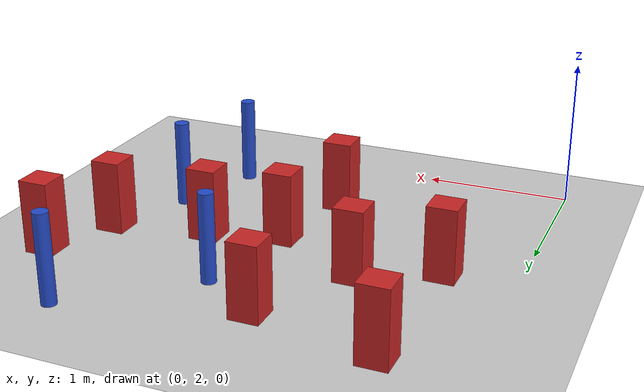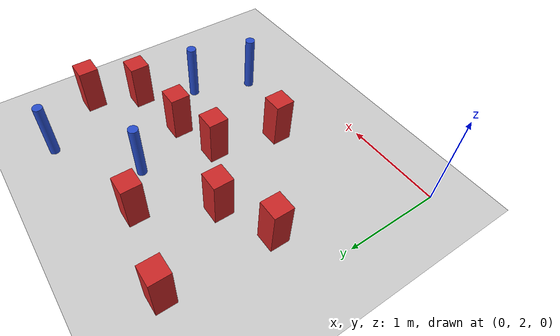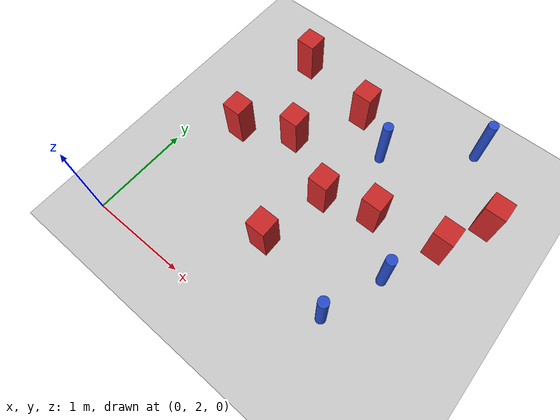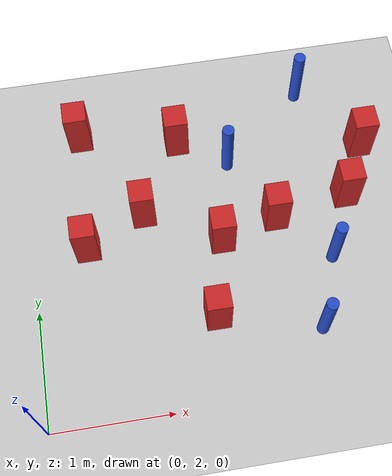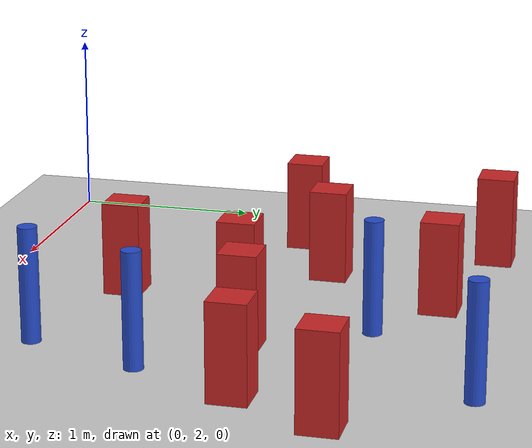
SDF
<sdf version="1.6">
 <world name="default">
  <model name="ground_plane">
   <static>1</static>
   <link name="link">
    <collision name="collision">
     <geometry><plane><normal>0 0 1</normal><size>100 100</size></plane></geometry>
     <surface><friction><ode><mu>100</mu><mu2>50</mu2></ode></friction></surface>
    </collision>
    <visual name="visual">
     <cast_shadows>0</cast_shadows>
     <geometry><plane><normal>0 0 1</normal><size>100 100</size></plane></geometry>
     <material>
      <ambient>1.0 1.0 1.0 1.0</ambient>
      <diffuse>0.8 0.8 0.8 1.0</diffuse>
      <specular>0.01 0.01 0.01 1.000000</specular>
     </material>
    </visual>
   </link>
  </model>
  <model name="square_post_obstacle1">
   <static>true</static>
   <pose>0.463909834269 3.49342118369 1.91545236811e-07 -7.35059704564e-06 1.12565212e-07 2.39332434364e-05</pose>
   <link name="link">
    <pose>0 0 0.25 0 -0 0</pose>
    <inertial>
     <mass>100</mass>
     <inertia>
      <ixx>0.166667</ixx>
      <ixy>0</ixy>
      <ixz>0</ixz>
      <iyy>0.166667</iyy>
      <iyz>0</iyz>
      <izz>0.166667</izz>
     </inertia>
    </inertial>
    <collision name="collision"><geometry><box><size>.2 .2 .5</size></box></geometry></collision>
    <visual name="visual">
     <geometry><box><size>.2 .2 .5</size></box></geometry>
     <material>
      <script><name>Gazebo/Red</name><uri>file://media/materials/scripts/gazebo.material</uri></script>
     </material>
    </visual>
   </link>
  </model>
  <model name="square_post_obstacle22">
   <static>true</static>
   <pose>2.95675925891 4.12485396174 1.91545236811e-07 -7.35059704564e-06 1.12565212e-07 2.39332434364e-05</pose>
   <link name="link">
    <pose>0 0 0.25 0 -0 0</pose>
    <inertial>
     <mass>100</mass>
     <inertia>
      <ixx>0.166667</ixx>
      <ixy>0</ixy>
      <ixz>0</ixz>
      <iyy>0.166667</iyy>
      <iyz>0</iyz>
      <izz>0.166667</izz>
     </inertia>
    </inertial>
    <collision name="collision"><geometry><box><size>.2 .2 .5</size></box></geometry></collision>
    <visual name="visual">
     <geometry><box><size>.2 .2 .5</size></box></geometry>
     <material>
      <script><name>Gazebo/Red</name><uri>file://media/materials/scripts/gazebo.material</uri></script>
     </material>
    </visual>
   </link>
  </model>
  <model name="pole_obstacle20">
   <static>true</static>
   <pose>1.76927743961 4.12315953788 7.38925637345e-09 -8.47170692799e-08 1.24976765033e-08 -1.74513093018e-07</pose>
   <link name="link">
    <pose>0 0 0.3 0 -0 0</pose>
    <inertial>
     <mass>1</mass>
     <inertia><ixx>0.145833</ixx><ixy>0</ixy><ixz>0</ixz><iyy>0.145833</iyy><iyz>0</iyz><izz>0.125</izz></inertia>
    </inertial>
    <collision name="collision">
     <geometry><cylinder><radius>0.05</radius><length>.6</length></cylinder></geometry>
    </collision>
    <visual name="visual">
     <geometry><cylinder><radius>0.05</radius><length>.6</length></cylinder></geometry>
     <material>
      <script><name>Gazebo/Blue</name><uri>file://media/materials/scripts/gazebo.material</uri></script>
     </material>
    </visual>
   </link>
  </model>
  <model name="square_post_obstacle39">
   <static>true</static>
   <pose>2.08297527546 3.52736369122 1.91545236811e-07 -7.35059704564e-06 1.12565212e-07 2.39332434364e-05</pose>
   <link name="link">
    <pose>0 0 0.25 0 -0 0</pose>
    <inertial>
     <mass>100</mass>
     <inertia>
      <ixx>0.166667</ixx>
      <ixy>0</ixy>
      <ixz>0</ixz>
      <iyy>0.166667</iyy>
      <iyz>0</iyz>
      <izz>0.166667</izz>
     </inertia>
    </inertial>
    <collision name="collision"><geometry><box><size>.2 .2 .5</size></box></geometry></collision>
    <visual name="visual">
     <geometry><box><size>.2 .2 .5</size></box></geometry>
     <material>
      <script><name>Gazebo/Red</name><uri>file://media/materials/scripts/gazebo.material</uri></script>
     </material>
    </visual>
   </link>
  </model>
  <model name="pole_obstacle53">
   <static>true</static>
   <pose>2.49972387664 3.10083860365 7.38925637345e-09 -8.47170692798e-08 1.24976764939e-08 -1.74513093025e-07</pose>
   <link name="link">
    <pose>0 0 0.3 0 -0 0</pose>
    <inertial>
     <mass>1</mass>
     <inertia><ixx>0.145833</ixx><ixy>0</ixy><ixz>0</ixz><iyy>0.145833</iyy><iyz>0</iyz><izz>0.125</izz></inertia>
    </inertial>
    <collision name="collision">
     <geometry><cylinder><radius>0.05</radius><length>.6</length></cylinder></geometry>
    </collision>
    <visual name="visual">
     <geometry><cylinder><radius>0.05</radius><length>.6</length></cylinder></geometry>
     <material>
      <script><name>Gazebo/Blue</name><uri>file://media/materials/scripts/gazebo.material</uri></script>
     </material>
    </visual>
   </link>
  </model>
  <model name="square_post_obstacle87">
   <static>true</static>
   <pose>1.35202105723 4.40023427131 1.91545236811e-07 -7.35059704564e-06 1.12565212e-07 2.39332434364e-05</pose>
   <link name="link">
    <pose>0 0 0.25 0 -0 0</pose>
    <inertial>
     <mass>100</mass>
     <inertia>
      <ixx>0.166667</ixx>
      <ixy>0</ixy>
      <ixz>0</ixz>
      <iyy>0.166667</iyy>
      <iyz>0</iyz>
      <izz>0.166667</izz>
     </inertia>
    </inertial>
    <collision name="collision"><geometry><box><size>.2 .2 .5</size></box></geometry></collision>
    <visual name="visual">
     <geometry><box><size>.2 .2 .5</size></box></geometry>
     <material>
      <script><name>Gazebo/Red</name><uri>file://media/materials/scripts/gazebo.material</uri></script>
     </material>
    </visual>
   </link>
  </model>
  <model name="pole_obstacle153">
   <static>true</static>
   <pose>2.2831176879 2.49677284236 7.38925637345e-09 -8.47170692798e-08 1.24976764939e-08 -1.74513093025e-07</pose>
   <link name="link">
    <pose>0 0 0.3 0 -0 0</pose>
    <inertial>
     <mass>1</mass>
     <inertia><ixx>0.145833</ixx><ixy>0</ixy><ixz>0</ixz><iyy>0.145833</iyy><iyz>0</iyz><izz>0.125</izz></inertia>
    </inertial>
    <collision name="collision">
     <geometry><cylinder><radius>0.05</radius><length>.6</length></cylinder></geometry>
    </collision>
    <visual name="visual">
     <geometry><cylinder><radius>0.05</radius><length>.6</length></cylinder></geometry>
     <material>
      <script><name>Gazebo/Blue</name><uri>file://media/materials/scripts/gazebo.material</uri></script>
     </material>
    </visual>
   </link>
  </model>
  <model name="pole_obstacle162">
   <static>true</static>
   <pose>2.50753851093 4.74440295036 7.38925637345e-09 -8.47170692798e-08 1.24976765033e-08 -1.74513093019e-07</pose>
   <link name="link">
    <pose>0 0 0.3 0 -0 0</pose>
    <inertial>
     <mass>1</mass>
     <inertia><ixx>0.145833</ixx><ixy>0</ixy><ixz>0</ixz><iyy>0.145833</iyy><iyz>0</iyz><izz>0.125</izz></inertia>
    </inertial>
    <collision name="collision">
     <geometry><cylinder><radius>0.05</radius><length>.6</length></cylinder></geometry>
    </collision>
    <visual name="visual">
     <geometry><cylinder><radius>0.05</radius><length>.6</length></cylinder></geometry>
     <material>
      <script><name>Gazebo/Blue</name><uri>file://media/materials/scripts/gazebo.material</uri></script>
     </material>
    </visual>
   </link>
  </model>
  <model name="square_post_obstacle164">
   <static>true</static>
   <pose>1.59699601284 3.39142102127 1.91545236811e-07 -7.35059704564e-06 1.12565212e-07 2.39332434364e-05</pose>
   <link name="link">
    <pose>0 0 0.25 0 -0 0</pose>
    <inertial>
     <mass>100</mass>
     <inertia>
      <ixx>0.166667</ixx>
      <ixy>0</ixy>
      <ixz>0</ixz>
      <iyy>0.166667</iyy>
      <iyz>0</iyz>
      <izz>0.166667</izz>
     </inertia>
    </inertial>
    <collision name="collision"><geometry><box><size>.2 .2 .5</size></box></geometry></collision>
    <visual name="visual">
     <geometry><box><size>.2 .2 .5</size></box></geometry>
     <material>
      <script><name>Gazebo/Red</name><uri>file://media/materials/scripts/gazebo.material</uri></script>
     </material>
    </visual>
   </link>
  </model>
  <model name="square_post_obstacle179">
   <static>true</static>
   <pose>1.44850268647 2.72467835274 1.91545236811e-07 -7.35059704564e-06 1.12565212e-07 2.39332434364e-05</pose>
   <link name="link">
    <pose>0 0 0.25 0 -0 0</pose>
    <inertial>
     <mass>100</mass>
     <inertia>
      <ixx>0.166667</ixx>
      <ixy>0</ixy>
      <ixz>0</ixz>
      <iyy>0.166667</iyy>
      <iyz>0</iyz>
      <izz>0.166667</izz>
     </inertia>
    </inertial>
    <collision name="collision"><geometry><box><size>.2 .2 .5</size></box></geometry></collision>
    <visual name="visual">
     <geometry><box><size>.2 .2 .5</size></box></geometry>
     <material>
      <script><name>Gazebo/Red</name><uri>file://media/materials/scripts/gazebo.material</uri></script>
     </material>
    </visual>
   </link>
  </model>
  <model name="square_post_obstacle192">
   <static>true</static>
   <pose>2.72738927853 3.64983182935 1.91545236811e-07 -7.35059704564e-06 1.12565212e-07 2.39332434364e-05</pose>
   <link name="link">
    <pose>0 0 0.25 0 -0 0</pose>
    <inertial>
     <mass>100</mass>
     <inertia>
      <ixx>0.166667</ixx>
      <ixy>0</ixy>
      <ixz>0</ixz>
      <iyy>0.166667</iyy>
      <iyz>0</iyz>
      <izz>0.166667</izz>
     </inertia>
    </inertial>
    <collision name="collision"><geometry><box><size>.2 .2 .5</size></box></geometry></collision>
    <visual name="visual">
     <geometry><box><size>.2 .2 .5</size></box></geometry>
     <material>
      <script><name>Gazebo/Red</name><uri>file://media/materials/scripts/gazebo.material</uri></script>
     </material>
    </visual>
   </link>
  </model>
  <model name="square_post_obstacle197">
   <static>true</static>
   <pose>0.505164932984 4.57664271726 1.91545236811e-07 -7.35059704564e-06 1.12565212e-07 2.39332434364e-05</pose>
   <link name="link">
    <pose>0 0 0.25 0 -0 0</pose>
    <inertial>
     <mass>100</mass>
     <inertia>
      <ixx>0.166667</ixx>
      <ixy>0</ixy>
      <ixz>0</ixz>
      <iyy>0.166667</iyy>
      <iyz>0</iyz>
      <izz>0.166667</izz>
     </inertia>
    </inertial>
    <collision name="collision"><geometry><box><size>.2 .2 .5</size></box></geometry></collision>
    <visual name="visual">
     <geometry><box><size>.2 .2 .5</size></box></geometry>
     <material>
      <script><name>Gazebo/Red</name><uri>file://media/materials/scripts/gazebo.material</uri></script>
     </material>
    </visual>
   </link>
  </model>
  <model name="square_post_obstacle208">
   <static>true</static>
   <pose>0.971494811311 3.73755191962 1.91545236811e-07 -7.35059704564e-06 1.12565212e-07 2.39332434364e-05</pose>
   <link name="link">
    <pose>0 0 0.25 0 -0 0</pose>
    <inertial>
     <mass>100</mass>
     <inertia>
      <ixx>0.166667</ixx>
      <ixy>0</ixy>
      <ixz>0</ixz>
      <iyy>0.166667</iyy>
      <iyz>0</iyz>
      <izz>0.166667</izz>
     </inertia>
    </inertial>
    <collision name="collision"><geometry><box><size>.2 .2 .5</size></box></geometry></collision>
    <visual name="visual">
     <geometry><box><size>.2 .2 .5</size></box></geometry>
     <material>
      <script><name>Gazebo/Red</name><uri>file://media/materials/scripts/gazebo.material</uri></script>
     </material>
    </visual>
   </link>
  </model>
 </world>
</sdf>
